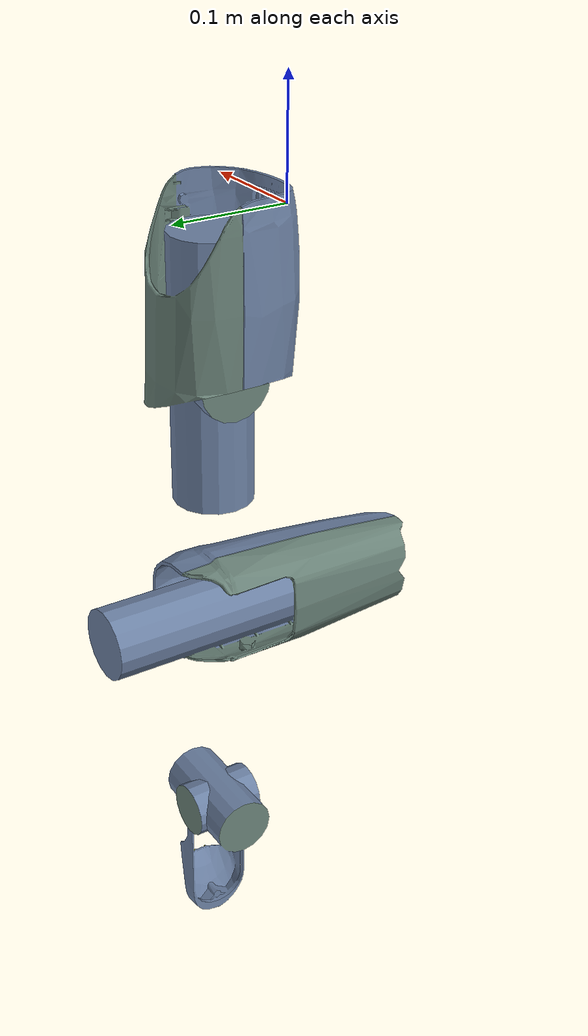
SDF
<?xml version='1.0'?>
<sdf version='1.6'>
    <model name='r_leg'>
        <link name='r_hip_1'>
            <pose>0 0.0681 -0.1199 3.14159 1.57079 -3.14159</pose>
            <inertial>
                <pose>0 -0.0782 0 0 -0 0</pose>
                <mass>0.754</mass>
                <inertia>
                    <ixx>0.01</ixx>
                    <ixy>0</ixy>
                    <ixz>0</ixz>
                    <iyy>0.01</iyy>
                    <iyz>0</iyz>
                    <izz>0.01</izz>
                </inertia>
            </inertial>
            <collision name='r_hip_1_collision'>
                <pose>0 0 0 1.76819 -1.57079 2.76109</pose>
                <geometry>
                    <mesh>
                        <scale>1 1 1</scale>
                        <uri>model://icub/meshes/collision/icub_simple_collision_r_hip_1.dae</uri>
                    </mesh>
                </geometry>
            </collision>
            <visual name='r_hip_1_visual'>
                <pose>0 0 0 1.76819 -1.57079 2.76109</pose>
                <geometry>
                    <mesh>
                        <scale>1 1 1</scale>
                        <uri>model://icub/meshes/visual/icub_r_hip_1.dae</uri>
                    </mesh>
                </geometry>
            </visual>
        </link>
        <joint name='r_hip_pitch' type='revolute'>
            <child>r_hip_1</child>
            <parent>root_link</parent>
            <axis>
                <xyz>5.7211e-18 1 -1.22967e-22</xyz>
                <limit>
                    <lower>-0.767945</lower>
                    <upper>2.30383</upper>
                    <effort>320</effort>
                    <velocity>100</velocity>
                </limit>
                <dynamics>
                    <damping>1</damping>
                    <friction>0</friction>
                    <spring_reference>0</spring_reference>
                    <spring_stiffness>0</spring_stiffness>
                </dynamics>
                <use_parent_model_frame>1</use_parent_model_frame>
            </axis>
        </joint>
        <link name='r_hip_2'>
            <pose>0 0.0681 -0.1199 -3.14159 -7.34641e-06 -3.14159</pose>
            <inertial>
                <pose>0 0 0.03045 0 -0 0</pose>
                <mass>0.526</mass>
                <inertia>
                    <ixx>0.01</ixx>
                    <ixy>0</ixy>
                    <ixz>0</ixz>
                    <iyy>0.01</iyy>
                    <iyz>0</iyz>
                    <izz>0.01</izz>
                </inertia>
            </inertial>
            <collision name='r_hip_2_collision'>
                <pose>0 0 0 -2.35627 -1.57079 2.35627</pose>
                <geometry>
                    <mesh>
                        <scale>1 1 1</scale>
                        <uri>model://icub/meshes/collision/icub_simple_collision_r_hip_2.dae</uri>
                    </mesh>
                </geometry>
            </collision>
            <visual name='r_hip_2_visual'>
                <pose>0 0 0 -2.35627 -1.57079 2.35627</pose>
                <geometry>
                    <mesh>
                        <scale>1 1 1</scale>
                        <uri>model://icub/meshes/visual/icub_r_hip_2.dae</uri>
                    </mesh>
                </geometry>
            </visual>
        </link>
        <joint name='r_hip_roll' type='revolute'>
            <child>r_hip_2</child>
            <parent>r_hip_1</parent>
            <axis>
                <xyz>1 5.55111e-17 -7.34641e-06</xyz>
                <limit>
                    <lower>-0.296706</lower>
                    <upper>2.07694</upper>
                    <effort>40</effort>
                    <velocity>100</velocity>
                </limit>
                <dynamics>
                    <damping>1</damping>
                    <friction>0</friction>
                    <spring_reference>0</spring_reference>
                    <spring_stiffness>0</spring_stiffness>
                </dynamics>
                <use_parent_model_frame>1</use_parent_model_frame>
            </axis>
        </joint>
        <link name='r_hip_3'>
            <pose>-4.88536e-07 0.0681 -0.1864 -3.14159 -7.34641e-06 -3.14159</pose>
            <inertial>
                <pose>0 0 0 0 -0 0</pose>
                <mass>0.1</mass>
                <inertia>
                    <ixx>0.01</ixx>
                    <ixy>0</ixy>
                    <ixz>0</ixz>
                    <iyy>0.01</iyy>
                    <iyz>0</iyz>
                    <izz>0.01</izz>
                </inertia>
            </inertial>
        </link>
        <joint name='r_leg_ft_sensor' type='fixed'>
            <child>r_hip_3</child>
            <parent>r_hip_2</parent>
        </joint>
        <link name='r_upper_leg'>
            <pose>0 0.0681 -0.1199 1.57079 -7.34641e-06 3.14159</pose>
            <inertial>
                <pose>0.00144 -0.15943 0.00039 0 -0 0</pose>
                <mass>2.175</mass>
                <inertia>
                    <ixx>0.01</ixx>
                    <ixy>0</ixy>
                    <ixz>0</ixz>
                    <iyy>0.01</iyy>
                    <iyz>-2.71051e-20</iyz>
                    <izz>0.01</izz>
                </inertia>
            </inertial>
            <collision name='r_upper_leg_collision'>
                <pose>0 0 0 1.57087 -1.57079 -7.26536e-05</pose>
                <geometry>
                    <mesh>
                        <scale>1 1 1</scale>
                        <uri>model://icub/meshes/collision/icub_simple_collision_r_thigh.dae</uri>
                    </mesh>
                </geometry>
            </collision>
            <visual name='r_upper_leg_visual'>
                <pose>0 0 0 1.57087 -1.57079 -7.26536e-05</pose>
                <geometry>
                    <mesh>
                        <scale>1 1 1</scale>
                        <uri>model://icub/meshes/visual/icub_r_thigh.dae</uri>
                    </mesh>
                </geometry>
            </visual>
        </link>
        <joint name='r_hip_yaw' type='revolute'>
            <child>r_upper_leg</child>
            <parent>r_hip_3</parent>
            <axis>
                <xyz>-7.34641e-06 3.67321e-06 -1</xyz>
                <limit>
                    <lower>-1.37881</lower>
                    <upper>1.37881</upper>
                    <effort>40</effort>
                    <velocity>100</velocity>
                </limit>
                <dynamics>
                    <damping>1</damping>
                    <friction>0</friction>
                    <spring_reference>0</spring_reference>
                    <spring_stiffness>0</spring_stiffness>
                </dynamics>
                <use_parent_model_frame>1</use_parent_model_frame>
            </axis>
        </joint>
        <link name='r_lower_leg'>
            <pose>-1.64266e-06 0.0681008 -0.3435 1.89254 -1.57078 -0.321751</pose>
            <inertial>
                <pose>-0.1071 0.00182 -0.00211 0 -0 0</pose>
                <mass>1.264</mass>
                <inertia>
                    <ixx>0.01</ixx>
                    <ixy>5.42101e-20</ixy>
                    <ixz>-5.42101e-20</ixz>
                    <iyy>0.01</iyy>
                    <iyz>8.47033e-22</iyz>
                    <izz>0.01</izz>
                </inertia>
            </inertial>
            <collision name='r_lower_leg_collision'>
                <pose>5.55112e-17 2.28232e-12 -8.32667e-17 3.14159 -1.14426e-17 1.5708</pose>
                <geometry>
                    <mesh>
                        <scale>1 1 1</scale>
                        <uri>model://icub/meshes/collision/icub_simple_collision_r_shank.dae</uri>
                    </mesh>
                </geometry>
            </collision>
            <visual name='r_lower_leg_visual'>
                <pose>5.55112e-17 2.28232e-12 -8.32667e-17 3.14159 -1.14426e-17 1.5708</pose>
                <geometry>
                    <mesh>
                        <scale>1 1 1</scale>
                        <uri>model://icub/meshes/visual/icub_r_shank.dae</uri>
                    </mesh>
                </geometry>
            </visual>
        </link>
        <joint name='r_knee' type='revolute'>
            <child>r_lower_leg</child>
            <parent>r_upper_leg</parent>
            <axis>
                <xyz>2.65362e-06 1 3.67318e-06</xyz>
                <limit>
                    <lower>-2.18166</lower>
                    <upper>0.401426</upper>
                    <effort>40</effort>
                    <velocity>100</velocity>
                </limit>
                <dynamics>
                    <damping>1</damping>
                    <friction>0</friction>
                    <spring_reference>0</spring_reference>
                    <spring_stiffness>0</spring_stiffness>
                </dynamics>
                <use_parent_model_frame>1</use_parent_model_frame>
            </axis>
        </joint>
        <link name='r_ankle_1'>
            <pose>-3.98984e-06 0.0681016 -0.5565 -2.81984 -1.57078 -0.321751</pose>
            <inertial>
                <pose>-0.0054 0.00163 -0.0172 0 -0 0</pose>
                <mass>0.746</mass>
                <inertia>
                    <ixx>0.01</ixx>
                    <ixy>-1.69407e-21</ixy>
                    <ixz>1.35525e-20</ixz>
                    <iyy>0.01</iyy>
                    <iyz>3.38813e-21</iyz>
                    <izz>0.01</izz>
                </inertia>
            </inertial>
            <collision name='r_ankle_1_collision'>
                <pose>1.11022e-16 -1.08717e-12 -4.45647e-12 -1.5708 -1.53106e-11 5.10376e-12</pose>
                <geometry>
                    <mesh>
                        <scale>1 1 1</scale>
                        <uri>model://icub/meshes/collision/icub_simple_collision_r_ankle_1.dae</uri>
                    </mesh>
                </geometry>
            </collision>
            <visual name='r_ankle_1_visual'>
                <pose>1.11022e-16 -1.08717e-12 -4.45647e-12 -1.5708 -1.53106e-11 5.10376e-12</pose>
                <geometry>
                    <mesh>
                        <scale>1 1 1</scale>
                        <uri>model://icub/meshes/visual/icub_r_ankle_1.dae</uri>
                    </mesh>
                </geometry>
            </visual>
        </link>
        <joint name='r_ankle_pitch' type='revolute'>
            <child>r_ankle_1</child>
            <parent>r_lower_leg</parent>
            <axis>
                <xyz>1.01959e-06 -1 -3.67322e-06</xyz>
                <limit>
                    <lower>-0.733038</lower>
                    <upper>0.366519</upper>
                    <effort>40</effort>
                    <velocity>100</velocity>
                </limit>
                <dynamics>
                    <damping>1</damping>
                    <friction>0</friction>
                    <spring_reference>0</spring_reference>
                    <spring_stiffness>0</spring_stiffness>
                </dynamics>
                <use_parent_model_frame>1</use_parent_model_frame>
            </axis>
        </joint>
        <link name='r_ankle_2'>
            <pose>-3.98984e-06 0.0681016 -0.5565 3.14159 -1.4236e-05 -3.14159</pose>
            <inertial>
                <pose>0 0 0.037 0 -0 0</pose>
                <mass>0.2675</mass>
                <inertia>
                    <ixx>0.01</ixx>
                    <ixy>0</ixy>
                    <ixz>0</ixz>
                    <iyy>0.01</iyy>
                    <iyz>0</iyz>
                    <izz>0.01</izz>
                </inertia>
            </inertial>
        </link>
        <joint name='r_ankle_roll' type='revolute'>
            <child>r_ankle_2</child>
            <parent>r_ankle_1</parent>
            <axis>
                <xyz>1 2.79362e-06 -1.4236e-05</xyz>
                <limit>
                    <lower>-0.418879</lower>
                    <upper>0.418879</upper>
                    <effort>40</effort>
                    <velocity>100</velocity>
                </limit>
                <dynamics>
                    <damping>1</damping>
                    <friction>0</friction>
                    <spring_reference>0</spring_reference>
                    <spring_stiffness>0</spring_stiffness>
                </dynamics>
                <use_parent_model_frame>1</use_parent_model_frame>
            </axis>
        </joint>
        <link name='r_foot'>
            <pose>-4.51657e-06 0.0681019 -0.5935 3.14159 -1.4236e-05 -3.14159</pose>
            <inertial>
                <pose>0.024069 0.000613931 -0.0284154 0 -0 0</pose>
                <mass>0.5935</mass>
                <inertia>
                    <ixx>0.01</ixx>
                    <ixy>4.51893e-06</ixy>
                    <ixz>0.000567784</ixz>
                    <iyy>0.01</iyy>
                    <iyz>6.62535e-07</iyz>
                    <izz>0.01</izz>
                </inertia>
            </inertial>
            <collision name='r_foot_collision'>
                <pose>0.03 0 -0.01 0 -0 0</pose>
                <geometry>
                    <box>
                        <size>0.15 0.07 0.03</size>
                    </box>
                </geometry>
                <max_contacts>4</max_contacts>
                <surface>
                    <contact>
                        <ode>
                            <soft_erp>0.2</soft_erp>
                            <soft_cfm>0</soft_cfm>
                            <kp>18000000</kp>
                            <kd>100</kd>
                            <max_vel>1</max_vel>
                            <min_depth>0.0001</min_depth>
                        </ode>
                    </contact>
                    <friction>
                        <ode>
                            <mu>1</mu>
                            <mu2>1</mu2>
                            <fdir1>0 0 0</fdir1>
                            <slip1>0</slip1>
                            <slip2>0</slip2>
                        </ode>
                    </friction>
                    <bounce>
                        <restitution_coefficient>0</restitution_coefficient>
                        <threshold>100000</threshold>
                    </bounce>
                </surface>
            </collision>
            <visual name='r_foot_visual'>
                <pose>4.45647e-12 1.08717e-12 -0.037 -2.81983 1.57079 0.321763</pose>
                <geometry>
                    <mesh>
                        <scale>1 1 1</scale>
                        <uri>model://icub/meshes/visual/icub_r_foot.dae</uri>
                    </mesh>
                </geometry>
            </visual>
            <sensor name="r_foot_contact_sensor" type="contact">
                <always_on>1</always_on>
                <update_rate>100.000000</update_rate>
                <contact>
                    <collision>r_foot_collision</collision>
                    <topic>__default_topic__</topic>
                </contact>
            </sensor>
        </link>
        <joint name='r_foot_ft_sensor' type='fixed'>
            <child>r_foot</child>
            <parent>r_ankle_2</parent>
        </joint>

    </model>
</sdf>
